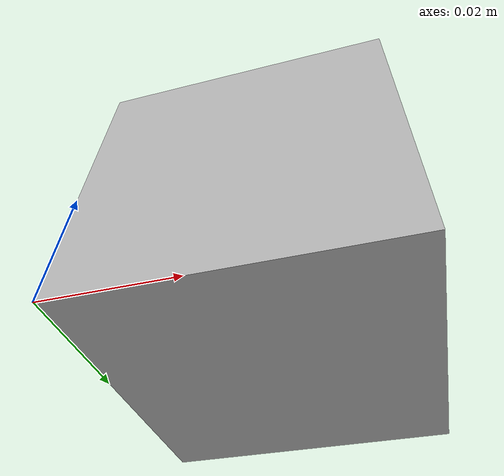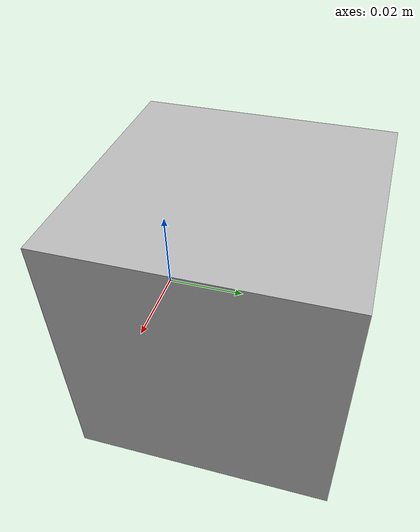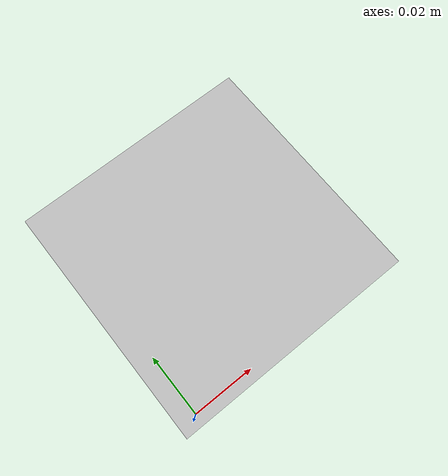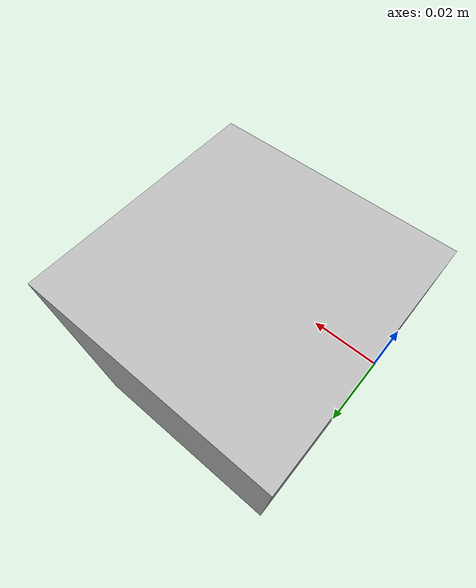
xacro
<?xml version="1.0" ?>
<robot name="block_I" xmlns:xacro="http://www.ros.org/wiki/xacro">

<xacro:include filename="$(find block_I_description)/urdf/materials.xacro" />
<xacro:include filename="$(find block_I_description)/urdf/block_I.trans" />
<xacro:include filename="$(find block_I_description)/urdf/block_I.gazebo" />
<link name="base_link">
  <inertial>
    <origin xyz="0.025 0.025 0.025" rpy="0 0 0"/>
    <mass value="0.98125"/>
    <inertia ixx="0.000409" iyy="0.000409" izz="0.000409" ixy="0.0" iyz="0.0" ixz="0.0"/>
  </inertial>
  <visual>
    <origin xyz="0 0 0" rpy="0 0 0"/>
    <geometry>
      <mesh filename="package://block_I_description/meshes/base_link.stl" scale="0.001 0.001 0.001"/>
    </geometry>
    <material name="silver"/>
  </visual>
  <collision>
    <origin xyz="0 0 0" rpy="0 0 0"/>
    <geometry>
      <mesh filename="package://block_I_description/meshes/base_link.stl" scale="0.001 0.001 0.001"/>
    </geometry>
  </collision>
</link>

</robot>

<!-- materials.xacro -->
<robot name="block_I" xmlns:xacro="http://www.ros.org/wiki/xacro" >

<material name="silver">
  <color rgba="0.700 0.700 0.700 1.000"/>
</material>

</robot>
